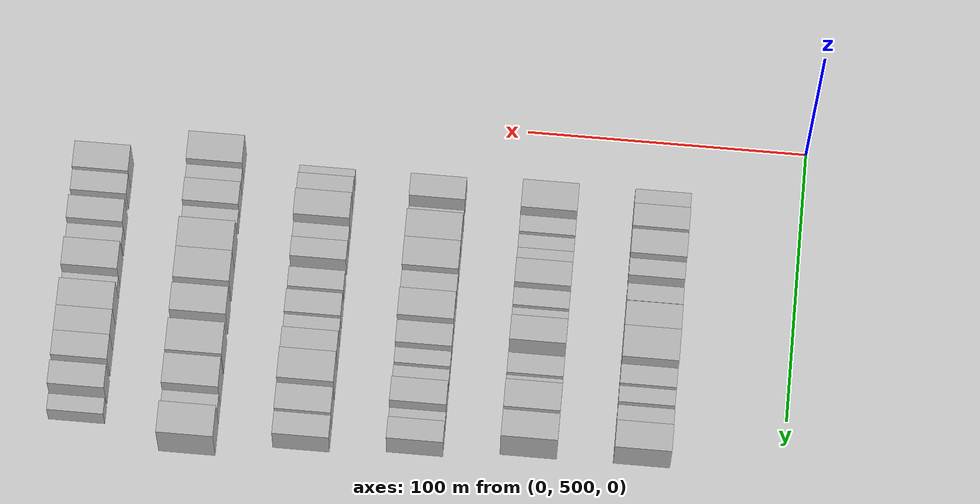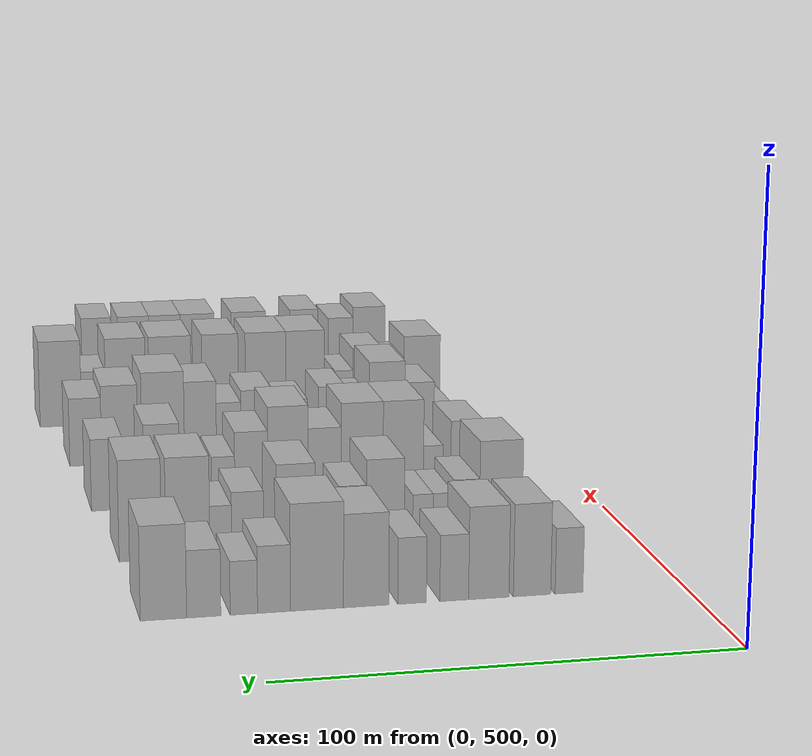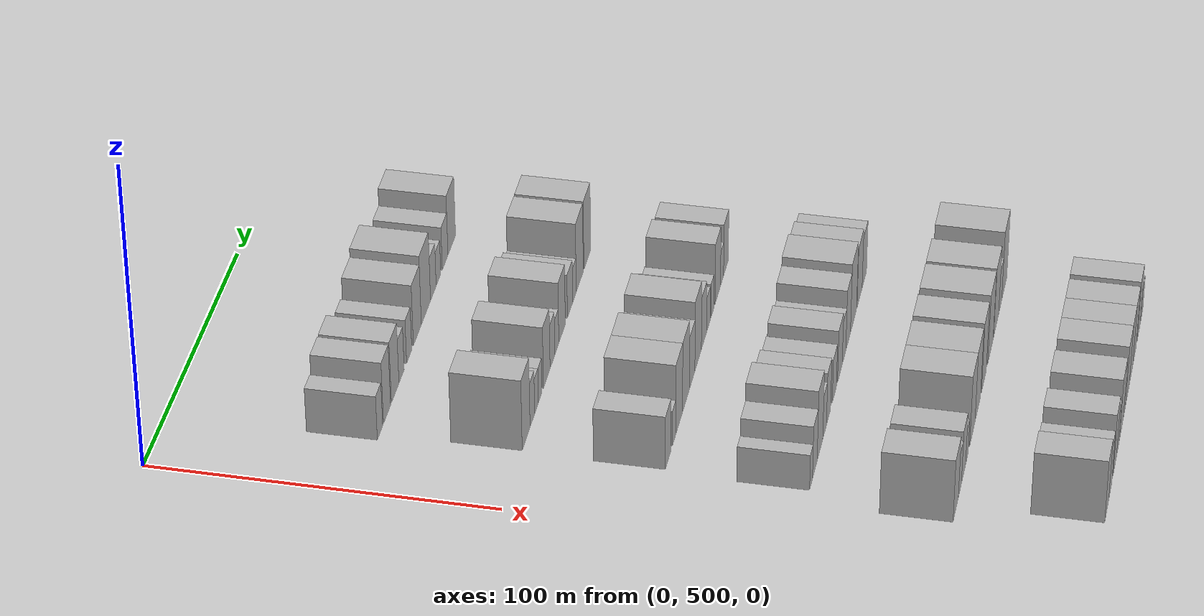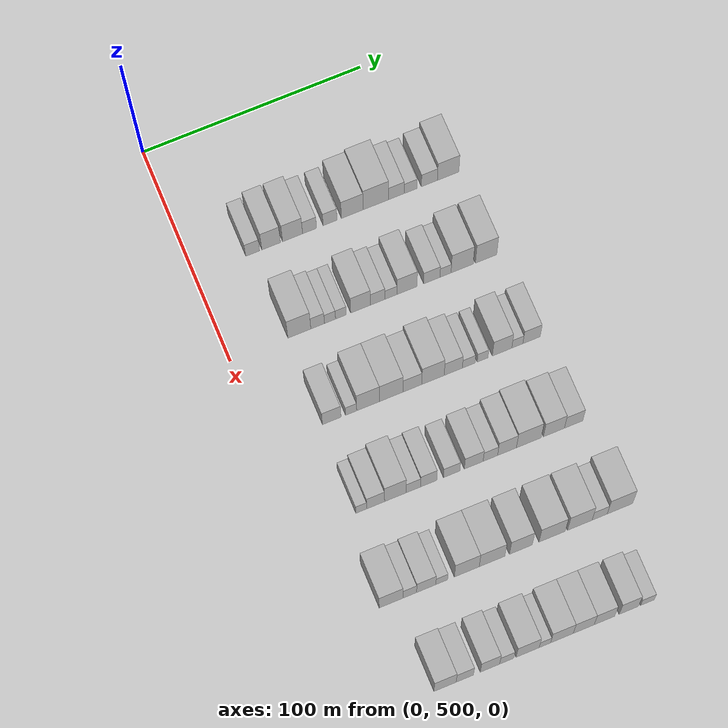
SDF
<sdf version="1.6">
 <world name="default">
  <model name="building_127">
   <static>1</static>
   <pose>50.0000 526.2221 0 0.000000 0.000000 0.000000</pose>
   <link name="link">
    <pose>0 0 7.50 0 0 0</pose>
    <collision name="collision"><geometry><box><size>20.0000 6.3201 15.0000</size></box></geometry></collision>
    <visual name="visual">
     <cast_shadows>0</cast_shadows>
     <geometry><box><size>20.0000 6.3201 15.0000</size></box></geometry>
     <material>
      <script>
       <uri>model://HANNAS_wall/materials/scripts</uri>
       <uri>model://HANNAS_wall/materials/textures</uri>
       <name>vrc/HANNAS_wall</name>
      </script>
     </material>
    </visual>
   </link>
  </model>
  <model name="building_128">
   <static>1</static>
   <pose>50.0000 534.5977 0 0.000000 0.000000 0.000000</pose>
   <link name="link">
    <pose>0 0 10.50 0 0 0</pose>
    <collision name="collision"><geometry><box><size>20.0000 8.4310 21.0000</size></box></geometry></collision>
    <visual name="visual">
     <cast_shadows>0</cast_shadows>
     <geometry><box><size>20.0000 8.4310 21.0000</size></box></geometry>
     <material>
      <script>
       <uri>model://HANNAS_wall/materials/scripts</uri>
       <uri>model://HANNAS_wall/materials/textures</uri>
       <name>vrc/HANNAS_wall</name>
      </script>
     </material>
    </visual>
   </link>
  </model>
  <model name="building_129">
   <static>1</static>
   <pose>50.0000 544.3470 0 0.000000 0.000000 0.000000</pose>
   <link name="link">
    <pose>0 0 10.50 0 0 0</pose>
    <collision name="collision"><geometry><box><size>20.0000 9.0677 21.0000</size></box></geometry></collision>
    <visual name="visual">
     <cast_shadows>0</cast_shadows>
     <geometry><box><size>20.0000 9.0677 21.0000</size></box></geometry>
     <material>
      <script>
       <uri>model://HANNAS_wall/materials/scripts</uri>
       <uri>model://HANNAS_wall/materials/textures</uri>
       <name>vrc/HANNAS_wall</name>
      </script>
     </material>
    </visual>
   </link>
  </model>
  <model name="building_130">
   <static>1</static>
   <pose>50.0000 552.0781 0 0.000000 0.000000 0.000000</pose>
   <link name="link">
    <pose>0 0 7.50 0 0 0</pose>
    <collision name="collision"><geometry><box><size>20.0000 6.3945 15.0000</size></box></geometry></collision>
    <visual name="visual">
     <cast_shadows>0</cast_shadows>
     <geometry><box><size>20.0000 6.3945 15.0000</size></box></geometry>
     <material>
      <script>
       <uri>model://HANNAS_wall/materials/scripts</uri>
       <uri>model://HANNAS_wall/materials/textures</uri>
       <name>vrc/HANNAS_wall</name>
      </script>
     </material>
    </visual>
   </link>
  </model>
  <model name="building_131">
   <static>1</static>
   <pose>50.0000 561.4440 0 0.000000 0.000000 0.000000</pose>
   <link name="link">
    <pose>0 0 7.50 0 0 0</pose>
    <collision name="collision"><geometry><box><size>20.0000 6.3374 15.0000</size></box></geometry></collision>
    <visual name="visual">
     <cast_shadows>0</cast_shadows>
     <geometry><box><size>20.0000 6.3374 15.0000</size></box></geometry>
     <material>
      <script>
       <uri>model://HANNAS_wall/materials/scripts</uri>
       <uri>model://HANNAS_wall/materials/textures</uri>
       <name>vrc/HANNAS_wall</name>
      </script>
     </material>
    </visual>
   </link>
  </model>
  <model name="building_132">
   <static>1</static>
   <pose>50.0000 571.5961 0 0.000000 0.000000 0.000000</pose>
   <link name="link">
    <pose>0 0 10.50 0 0 0</pose>
    <collision name="collision"><geometry><box><size>20.0000 9.9668 21.0000</size></box></geometry></collision>
    <visual name="visual">
     <cast_shadows>0</cast_shadows>
     <geometry><box><size>20.0000 9.9668 21.0000</size></box></geometry>
     <material>
      <script>
       <uri>model://HANNAS_wall/materials/scripts</uri>
       <uri>model://HANNAS_wall/materials/textures</uri>
       <name>vrc/HANNAS_wall</name>
      </script>
     </material>
    </visual>
   </link>
  </model>
  <model name="building_133">
   <static>1</static>
   <pose>50.0000 582.3894 0 0.000000 0.000000 0.000000</pose>
   <link name="link">
    <pose>0 0 12.00 0 0 0</pose>
    <collision name="collision"><geometry><box><size>20.0000 11.6197 24.0000</size></box></geometry></collision>
    <visual name="visual">
     <cast_shadows>0</cast_shadows>
     <geometry><box><size>20.0000 11.6197 24.0000</size></box></geometry>
     <material>
      <script>
       <uri>model://HANNAS_wall/materials/scripts</uri>
       <uri>model://HANNAS_wall/materials/textures</uri>
       <name>vrc/HANNAS_wall</name>
      </script>
     </material>
    </visual>
   </link>
  </model>
  <model name="building_134">
   <static>1</static>
   <pose>50.0000 591.7671 0 0.000000 0.000000 0.000000</pose>
   <link name="link">
    <pose>0 0 7.50 0 0 0</pose>
    <collision name="collision"><geometry><box><size>20.0000 7.1357 15.0000</size></box></geometry></collision>
    <visual name="visual">
     <cast_shadows>0</cast_shadows>
     <geometry><box><size>20.0000 7.1357 15.0000</size></box></geometry>
     <material>
      <script>
       <uri>model://HANNAS_wall/materials/scripts</uri>
       <uri>model://HANNAS_wall/materials/textures</uri>
       <name>vrc/HANNAS_wall</name>
      </script>
     </material>
    </visual>
   </link>
  </model>
  <model name="building_135">
   <static>1</static>
   <pose>50.0000 598.2877 0 0.000000 0.000000 0.000000</pose>
   <link name="link">
    <pose>0 0 6.00 0 0 0</pose>
    <collision name="collision"><geometry><box><size>20.0000 5.9053 12.0000</size></box></geometry></collision>
    <visual name="visual">
     <cast_shadows>0</cast_shadows>
     <geometry><box><size>20.0000 5.9053 12.0000</size></box></geometry>
     <material>
      <script>
       <uri>model://HANNAS_wall/materials/scripts</uri>
       <uri>model://HANNAS_wall/materials/textures</uri>
       <name>vrc/HANNAS_wall</name>
      </script>
     </material>
    </visual>
   </link>
  </model>
  <model name="building_136">
   <static>1</static>
   <pose>50.0000 606.9169 0 0.000000 0.000000 0.000000</pose>
   <link name="link">
    <pose>0 0 7.50 0 0 0</pose>
    <collision name="collision"><geometry><box><size>20.0000 7.3531 15.0000</size></box></geometry></collision>
    <visual name="visual">
     <cast_shadows>0</cast_shadows>
     <geometry><box><size>20.0000 7.3531 15.0000</size></box></geometry>
     <material>
      <script>
       <uri>model://HANNAS_wall/materials/scripts</uri>
       <uri>model://HANNAS_wall/materials/textures</uri>
       <name>vrc/HANNAS_wall</name>
      </script>
     </material>
    </visual>
   </link>
  </model>
  <model name="building_137">
   <static>1</static>
   <pose>50.0000 615.5396 0 0.000000 0.000000 0.000000</pose>
   <link name="link">
    <pose>0 0 10.50 0 0 0</pose>
    <collision name="collision"><geometry><box><size>20.0000 9.8924 21.0000</size></box></geometry></collision>
    <visual name="visual">
     <cast_shadows>0</cast_shadows>
     <geometry><box><size>20.0000 9.8924 21.0000</size></box></geometry>
     <material>
      <script>
       <uri>model://HANNAS_wall/materials/scripts</uri>
       <uri>model://HANNAS_wall/materials/textures</uri>
       <name>vrc/HANNAS_wall</name>
      </script>
     </material>
    </visual>
   </link>
  </model>
  <model name="building_258">
   <static>1</static>
   <pose>90.0000 531.1487 0 0.000000 0.000000 0.000000</pose>
   <link name="link">
    <pose>0 0 12.00 0 0 0</pose>
    <collision name="collision"><geometry><box><size>20.0000 10.3593 24.0000</size></box></geometry></collision>
    <visual name="visual">
     <cast_shadows>0</cast_shadows>
     <geometry><box><size>20.0000 10.3593 24.0000</size></box></geometry>
     <material>
      <script>
       <uri>model://HANNAS_wall/materials/scripts</uri>
       <uri>model://HANNAS_wall/materials/textures</uri>
       <name>vrc/HANNAS_wall</name>
      </script>
     </material>
    </visual>
   </link>
  </model>
  <model name="building_259">
   <static>1</static>
   <pose>90.0000 539.4129 0 0.000000 0.000000 0.000000</pose>
   <link name="link">
    <pose>0 0 7.50 0 0 0</pose>
    <collision name="collision"><geometry><box><size>20.0000 6.1691 15.0000</size></box></geometry></collision>
    <visual name="visual">
     <cast_shadows>0</cast_shadows>
     <geometry><box><size>20.0000 6.1691 15.0000</size></box></geometry>
     <material>
      <script>
       <uri>model://HANNAS_wall/materials/scripts</uri>
       <uri>model://HANNAS_wall/materials/textures</uri>
       <name>vrc/HANNAS_wall</name>
      </script>
     </material>
    </visual>
   </link>
  </model>
  <model name="building_260">
   <static>1</static>
   <pose>90.0000 544.9897 0 0.000000 0.000000 0.000000</pose>
   <link name="link">
    <pose>0 0 6.00 0 0 0</pose>
    <collision name="collision"><geometry><box><size>20.0000 4.9845 12.0000</size></box></geometry></collision>
    <visual name="visual">
     <cast_shadows>0</cast_shadows>
     <geometry><box><size>20.0000 4.9845 12.0000</size></box></geometry>
     <material>
      <script>
       <uri>model://HANNAS_wall/materials/scripts</uri>
       <uri>model://HANNAS_wall/materials/textures</uri>
       <name>vrc/HANNAS_wall</name>
      </script>
     </material>
    </visual>
   </link>
  </model>
  <model name="building_261">
   <static>1</static>
   <pose>90.0000 549.8990 0 0.000000 0.000000 0.000000</pose>
   <link name="link">
    <pose>0 0 6.00 0 0 0</pose>
    <collision name="collision"><geometry><box><size>20.0000 4.8341 12.0000</size></box></geometry></collision>
    <visual name="visual">
     <cast_shadows>0</cast_shadows>
     <geometry><box><size>20.0000 4.8341 12.0000</size></box></geometry>
     <material>
      <script>
       <uri>model://HANNAS_wall/materials/scripts</uri>
       <uri>model://HANNAS_wall/materials/textures</uri>
       <name>vrc/HANNAS_wall</name>
      </script>
     </material>
    </visual>
   </link>
  </model>
  <model name="building_262">
   <static>1</static>
   <pose>90.0000 558.8101 0 0.000000 0.000000 0.000000</pose>
   <link name="link">
    <pose>0 0 10.50 0 0 0</pose>
    <collision name="collision"><geometry><box><size>20.0000 8.9882 21.0000</size></box></geometry></collision>
    <visual name="visual">
     <cast_shadows>0</cast_shadows>
     <geometry><box><size>20.0000 8.9882 21.0000</size></box></geometry>
     <material>
      <script>
       <uri>model://HANNAS_wall/materials/scripts</uri>
       <uri>model://HANNAS_wall/materials/textures</uri>
       <name>vrc/HANNAS_wall</name>
      </script>
     </material>
    </visual>
   </link>
  </model>
  <model name="building_263">
   <static>1</static>
   <pose>90.0000 566.5755 0 0.000000 0.000000 0.000000</pose>
   <link name="link">
    <pose>0 0 7.50 0 0 0</pose>
    <collision name="collision"><geometry><box><size>20.0000 6.5426 15.0000</size></box></geometry></collision>
    <visual name="visual">
     <cast_shadows>0</cast_shadows>
     <geometry><box><size>20.0000 6.5426 15.0000</size></box></geometry>
     <material>
      <script>
       <uri>model://HANNAS_wall/materials/scripts</uri>
       <uri>model://HANNAS_wall/materials/textures</uri>
       <name>vrc/HANNAS_wall</name>
      </script>
     </material>
    </visual>
   </link>
  </model>
  <model name="building_264">
   <static>1</static>
   <pose>90.0000 572.6094 0 0.000000 0.000000 0.000000</pose>
   <link name="link">
    <pose>0 0 6.00 0 0 0</pose>
    <collision name="collision"><geometry><box><size>20.0000 5.5252 12.0000</size></box></geometry></collision>
    <visual name="visual">
     <cast_shadows>0</cast_shadows>
     <geometry><box><size>20.0000 5.5252 12.0000</size></box></geometry>
     <material>
      <script>
       <uri>model://HANNAS_wall/materials/scripts</uri>
       <uri>model://HANNAS_wall/materials/textures</uri>
       <name>vrc/HANNAS_wall</name>
      </script>
     </material>
    </visual>
   </link>
  </model>
  <model name="building_265">
   <static>1</static>
   <pose>90.0000 579.9141 0 0.000000 0.000000 0.000000</pose>
   <link name="link">
    <pose>0 0 10.50 0 0 0</pose>
    <collision name="collision"><geometry><box><size>20.0000 9.0842 21.0000</size></box></geometry></collision>
    <visual name="visual">
     <cast_shadows>0</cast_shadows>
     <geometry><box><size>20.0000 9.0842 21.0000</size></box></geometry>
     <material>
      <script>
       <uri>model://HANNAS_wall/materials/scripts</uri>
       <uri>model://HANNAS_wall/materials/textures</uri>
       <name>vrc/HANNAS_wall</name>
      </script>
     </material>
    </visual>
   </link>
  </model>
  <model name="building_266">
   <static>1</static>
   <pose>90.0000 591.1749 0 0.000000 0.000000 0.000000</pose>
   <link name="link">
    <pose>0 0 7.50 0 0 0</pose>
    <collision name="collision"><geometry><box><size>20.0000 7.4373 15.0000</size></box></geometry></collision>
    <visual name="visual">
     <cast_shadows>0</cast_shadows>
     <geometry><box><size>20.0000 7.4373 15.0000</size></box></geometry>
     <material>
      <script>
       <uri>model://HANNAS_wall/materials/scripts</uri>
       <uri>model://HANNAS_wall/materials/textures</uri>
       <name>vrc/HANNAS_wall</name>
      </script>
     </material>
    </visual>
   </link>
  </model>
  <model name="building_267">
   <static>1</static>
   <pose>90.0000 597.4122 0 0.000000 0.000000 0.000000</pose>
   <link name="link">
    <pose>0 0 6.00 0 0 0</pose>
    <collision name="collision"><geometry><box><size>20.0000 5.0372 12.0000</size></box></geometry></collision>
    <visual name="visual">
     <cast_shadows>0</cast_shadows>
     <geometry><box><size>20.0000 5.0372 12.0000</size></box></geometry>
     <material>
      <script>
       <uri>model://HANNAS_wall/materials/scripts</uri>
       <uri>model://HANNAS_wall/materials/textures</uri>
       <name>vrc/HANNAS_wall</name>
      </script>
     </material>
    </visual>
   </link>
  </model>
  <model name="building_268">
   <static>1</static>
   <pose>90.0000 604.9952 0 0.000000 0.000000 0.000000</pose>
   <link name="link">
    <pose>0 0 12.00 0 0 0</pose>
    <collision name="collision"><geometry><box><size>20.0000 10.1287 24.0000</size></box></geometry></collision>
    <visual name="visual">
     <cast_shadows>0</cast_shadows>
     <geometry><box><size>20.0000 10.1287 24.0000</size></box></geometry>
     <material>
      <script>
       <uri>model://HANNAS_wall/materials/scripts</uri>
       <uri>model://HANNAS_wall/materials/textures</uri>
       <name>vrc/HANNAS_wall</name>
      </script>
     </material>
    </visual>
   </link>
  </model>
  <model name="building_269">
   <static>1</static>
   <pose>90.0000 615.9355 0 0.000000 0.000000 0.000000</pose>
   <link name="link">
    <pose>0 0 12.00 0 0 0</pose>
    <collision name="collision"><geometry><box><size>20.0000 9.7520 24.0000</size></box></geometry></collision>
    <visual name="visual">
     <cast_shadows>0</cast_shadows>
     <geometry><box><size>20.0000 9.7520 24.0000</size></box></geometry>
     <material>
      <script>
       <uri>model://HANNAS_wall/materials/scripts</uri>
       <uri>model://HANNAS_wall/materials/textures</uri>
       <name>vrc/HANNAS_wall</name>
      </script>
     </material>
    </visual>
   </link>
  </model>
  <model name="building_402">
   <static>1</static>
   <pose>130.0000 529.3530 0 0.000000 0.000000 0.000000</pose>
   <link name="link">
    <pose>0 0 9.00 0 0 0</pose>
    <collision name="collision"><geometry><box><size>20.0000 8.3183 18.0000</size></box></geometry></collision>
    <visual name="visual">
     <cast_shadows>0</cast_shadows>
     <geometry><box><size>20.0000 8.3183 18.0000</size></box></geometry>
     <material>
      <script>
       <uri>model://HANNAS_wall/materials/scripts</uri>
       <uri>model://HANNAS_wall/materials/textures</uri>
       <name>vrc/HANNAS_wall</name>
      </script>
     </material>
    </visual>
   </link>
  </model>
  <model name="building_403">
   <static>1</static>
   <pose>130.0000 538.0249 0 0.000000 0.000000 0.000000</pose>
   <link name="link">
    <pose>0 0 6.00 0 0 0</pose>
    <collision name="collision"><geometry><box><size>20.0000 5.0255 12.0000</size></box></geometry></collision>
    <visual name="visual">
     <cast_shadows>0</cast_shadows>
     <geometry><box><size>20.0000 5.0255 12.0000</size></box></geometry>
     <material>
      <script>
       <uri>model://HANNAS_wall/materials/scripts</uri>
       <uri>model://HANNAS_wall/materials/textures</uri>
       <name>vrc/HANNAS_wall</name>
      </script>
     </material>
    </visual>
   </link>
  </model>
  <model name="building_404">
   <static>1</static>
   <pose>130.0000 545.6767 0 0.000000 0.000000 0.000000</pose>
   <link name="link">
    <pose>0 0 12.00 0 0 0</pose>
    <collision name="collision"><geometry><box><size>20.0000 10.2782 24.0000</size></box></geometry></collision>
    <visual name="visual">
     <cast_shadows>0</cast_shadows>
     <geometry><box><size>20.0000 10.2782 24.0000</size></box></geometry>
     <material>
      <script>
       <uri>model://HANNAS_wall/materials/scripts</uri>
       <uri>model://HANNAS_wall/materials/textures</uri>
       <name>vrc/HANNAS_wall</name>
      </script>
     </material>
    </visual>
   </link>
  </model>
  <model name="building_405">
   <static>1</static>
   <pose>130.0000 556.1029 0 0.000000 0.000000 0.000000</pose>
   <link name="link">
    <pose>0 0 12.00 0 0 0</pose>
    <collision name="collision"><geometry><box><size>20.0000 10.5742 24.0000</size></box></geometry></collision>
    <visual name="visual">
     <cast_shadows>0</cast_shadows>
     <geometry><box><size>20.0000 10.5742 24.0000</size></box></geometry>
     <material>
      <script>
       <uri>model://HANNAS_wall/materials/scripts</uri>
       <uri>model://HANNAS_wall/materials/textures</uri>
       <name>vrc/HANNAS_wall</name>
      </script>
     </material>
    </visual>
   </link>
  </model>
  <model name="building_406">
   <static>1</static>
   <pose>130.0000 565.5772 0 0.000000 0.000000 0.000000</pose>
   <link name="link">
    <pose>0 0 9.00 0 0 0</pose>
    <collision name="collision"><geometry><box><size>20.0000 8.3745 18.0000</size></box></geometry></collision>
    <visual name="visual">
     <cast_shadows>0</cast_shadows>
     <geometry><box><size>20.0000 8.3745 18.0000</size></box></geometry>
     <material>
      <script>
       <uri>model://HANNAS_wall/materials/scripts</uri>
       <uri>model://HANNAS_wall/materials/textures</uri>
       <name>vrc/HANNAS_wall</name>
      </script>
     </material>
    </visual>
   </link>
  </model>
  <model name="building_407">
   <static>1</static>
   <pose>130.0000 574.8259 0 0.000000 0.000000 0.000000</pose>
   <link name="link">
    <pose>0 0 12.00 0 0 0</pose>
    <collision name="collision"><geometry><box><size>20.0000 10.1228 24.0000</size></box></geometry></collision>
    <visual name="visual">
     <cast_shadows>0</cast_shadows>
     <geometry><box><size>20.0000 10.1228 24.0000</size></box></geometry>
     <material>
      <script>
       <uri>model://HANNAS_wall/materials/scripts</uri>
       <uri>model://HANNAS_wall/materials/textures</uri>
       <name>vrc/HANNAS_wall</name>
      </script>
     </material>
    </visual>
   </link>
  </model>
  <model name="building_408">
   <static>1</static>
   <pose>130.0000 583.9973 0 0.000000 0.000000 0.000000</pose>
   <link name="link">
    <pose>0 0 9.00 0 0 0</pose>
    <collision name="collision"><geometry><box><size>20.0000 8.2201 18.0000</size></box></geometry></collision>
    <visual name="visual">
     <cast_shadows>0</cast_shadows>
     <geometry><box><size>20.0000 8.2201 18.0000</size></box></geometry>
     <material>
      <script>
       <uri>model://HANNAS_wall/materials/scripts</uri>
       <uri>model://HANNAS_wall/materials/textures</uri>
       <name>vrc/HANNAS_wall</name>
      </script>
     </material>
    </visual>
   </link>
  </model>
  <model name="building_409">
   <static>1</static>
   <pose>130.0000 590.9670 0 0.000000 0.000000 0.000000</pose>
   <link name="link">
    <pose>0 0 6.00 0 0 0</pose>
    <collision name="collision"><geometry><box><size>20.0000 5.7194 12.0000</size></box></geometry></collision>
    <visual name="visual">
     <cast_shadows>0</cast_shadows>
     <geometry><box><size>20.0000 5.7194 12.0000</size></box></geometry>
     <material>
      <script>
       <uri>model://HANNAS_wall/materials/scripts</uri>
       <uri>model://HANNAS_wall/materials/textures</uri>
       <name>vrc/HANNAS_wall</name>
      </script>
     </material>
    </visual>
   </link>
  </model>
  <model name="building_410">
   <static>1</static>
   <pose>130.0000 597.2537 0 0.000000 0.000000 0.000000</pose>
   <link name="link">
    <pose>0 0 6.00 0 0 0</pose>
    <collision name="collision"><geometry><box><size>20.0000 4.8541 12.0000</size></box></geometry></collision>
    <visual name="visual">
     <cast_shadows>0</cast_shadows>
     <geometry><box><size>20.0000 4.8541 12.0000</size></box></geometry>
     <material>
      <script>
       <uri>model://HANNAS_wall/materials/scripts</uri>
       <uri>model://HANNAS_wall/materials/textures</uri>
       <name>vrc/HANNAS_wall</name>
      </script>
     </material>
    </visual>
   </link>
  </model>
  <model name="building_411">
   <static>1</static>
   <pose>130.0000 606.0888 0 0.000000 0.000000 0.000000</pose>
   <link name="link">
    <pose>0 0 10.50 0 0 0</pose>
    <collision name="collision"><geometry><box><size>20.0000 8.8160 21.0000</size></box></geometry></collision>
    <visual name="visual">
     <cast_shadows>0</cast_shadows>
     <geometry><box><size>20.0000 8.8160 21.0000</size></box></geometry>
     <material>
      <script>
       <uri>model://HANNAS_wall/materials/scripts</uri>
       <uri>model://HANNAS_wall/materials/textures</uri>
       <name>vrc/HANNAS_wall</name>
      </script>
     </material>
    </visual>
   </link>
  </model>
  <model name="building_412">
   <static>1</static>
   <pose>130.0000 613.0206 0 0.000000 0.000000 0.000000</pose>
   <link name="link">
    <pose>0 0 6.00 0 0 0</pose>
    <collision name="collision"><geometry><box><size>20.0000 5.0476 12.0000</size></box></geometry></collision>
    <visual name="visual">
     <cast_shadows>0</cast_shadows>
     <geometry><box><size>20.0000 5.0476 12.0000</size></box></geometry>
     <material>
      <script>
       <uri>model://HANNAS_wall/materials/scripts</uri>
       <uri>model://HANNAS_wall/materials/textures</uri>
       <name>vrc/HANNAS_wall</name>
      </script>
     </material>
    </visual>
   </link>
  </model>
  <model name="building_413">
   <static>1</static>
   <pose>130.0000 619.4748 0 0.000000 0.000000 0.000000</pose>
   <link name="link">
    <pose>0 0 9.00 0 0 0</pose>
    <collision name="collision"><geometry><box><size>20.0000 7.8607 18.0000</size></box></geometry></collision>
    <visual name="visual">
     <cast_shadows>0</cast_shadows>
     <geometry><box><size>20.0000 7.8607 18.0000</size></box></geometry>
     <material>
      <script>
       <uri>model://HANNAS_wall/materials/scripts</uri>
       <uri>model://HANNAS_wall/materials/textures</uri>
       <name>vrc/HANNAS_wall</name>
      </script>
     </material>
    </visual>
   </link>
  </model>
  <model name="building_531">
   <static>1</static>
   <pose>170.0000 526.0265 0 0.000000 0.000000 0.000000</pose>
   <link name="link">
    <pose>0 0 6.00 0 0 0</pose>
    <collision name="collision"><geometry><box><size>20.0000 4.8281 12.0000</size></box></geometry></collision>
    <visual name="visual">
     <cast_shadows>0</cast_shadows>
     <geometry><box><size>20.0000 4.8281 12.0000</size></box></geometry>
     <material>
      <script>
       <uri>model://HANNAS_wall/materials/scripts</uri>
       <uri>model://HANNAS_wall/materials/textures</uri>
       <name>vrc/HANNAS_wall</name>
      </script>
     </material>
    </visual>
   </link>
  </model>
  <model name="building_532">
   <static>1</static>
   <pose>170.0000 532.4180 0 0.000000 0.000000 0.000000</pose>
   <link name="link">
    <pose>0 0 9.00 0 0 0</pose>
    <collision name="collision"><geometry><box><size>20.0000 7.9548 18.0000</size></box></geometry></collision>
    <visual name="visual">
     <cast_shadows>0</cast_shadows>
     <geometry><box><size>20.0000 7.9548 18.0000</size></box></geometry>
     <material>
      <script>
       <uri>model://HANNAS_wall/materials/scripts</uri>
       <uri>model://HANNAS_wall/materials/textures</uri>
       <name>vrc/HANNAS_wall</name>
      </script>
     </material>
    </visual>
   </link>
  </model>
  <model name="building_533">
   <static>1</static>
   <pose>170.0000 541.2017 0 0.000000 0.000000 0.000000</pose>
   <link name="link">
    <pose>0 0 12.00 0 0 0</pose>
    <collision name="collision"><geometry><box><size>20.0000 9.6127 24.0000</size></box></geometry></collision>
    <visual name="visual">
     <cast_shadows>0</cast_shadows>
     <geometry><box><size>20.0000 9.6127 24.0000</size></box></geometry>
     <material>
      <script>
       <uri>model://HANNAS_wall/materials/scripts</uri>
       <uri>model://HANNAS_wall/materials/textures</uri>
       <name>vrc/HANNAS_wall</name>
      </script>
     </material>
    </visual>
   </link>
  </model>
  <model name="building_534">
   <static>1</static>
   <pose>170.0000 549.2223 0 0.000000 0.000000 0.000000</pose>
   <link name="link">
    <pose>0 0 7.50 0 0 0</pose>
    <collision name="collision"><geometry><box><size>20.0000 6.4285 15.0000</size></box></geometry></collision>
    <visual name="visual">
     <cast_shadows>0</cast_shadows>
     <geometry><box><size>20.0000 6.4285 15.0000</size></box></geometry>
     <material>
      <script>
       <uri>model://HANNAS_wall/materials/scripts</uri>
       <uri>model://HANNAS_wall/materials/textures</uri>
       <name>vrc/HANNAS_wall</name>
      </script>
     </material>
    </visual>
   </link>
  </model>
  <model name="building_535">
   <static>1</static>
   <pose>170.0000 556.0421 0 0.000000 0.000000 0.000000</pose>
   <link name="link">
    <pose>0 0 9.00 0 0 0</pose>
    <collision name="collision"><geometry><box><size>20.0000 7.2109 18.0000</size></box></geometry></collision>
    <visual name="visual">
     <cast_shadows>0</cast_shadows>
     <geometry><box><size>20.0000 7.2109 18.0000</size></box></geometry>
     <material>
      <script>
       <uri>model://HANNAS_wall/materials/scripts</uri>
       <uri>model://HANNAS_wall/materials/textures</uri>
       <name>vrc/HANNAS_wall</name>
      </script>
     </material>
    </visual>
   </link>
  </model>
  <model name="building_536">
   <static>1</static>
   <pose>170.0000 566.3061 0 0.000000 0.000000 0.000000</pose>
   <link name="link">
    <pose>0 0 7.50 0 0 0</pose>
    <collision name="collision"><geometry><box><size>20.0000 7.3171 15.0000</size></box></geometry></collision>
    <visual name="visual">
     <cast_shadows>0</cast_shadows>
     <geometry><box><size>20.0000 7.3171 15.0000</size></box></geometry>
     <material>
      <script>
       <uri>model://HANNAS_wall/materials/scripts</uri>
       <uri>model://HANNAS_wall/materials/textures</uri>
       <name>vrc/HANNAS_wall</name>
      </script>
     </material>
    </visual>
   </link>
  </model>
  <model name="building_537">
   <static>1</static>
   <pose>170.0000 576.1767 0 0.000000 0.000000 0.000000</pose>
   <link name="link">
    <pose>0 0 9.00 0 0 0</pose>
    <collision name="collision"><geometry><box><size>20.0000 8.4241 18.0000</size></box></geometry></collision>
    <visual name="visual">
     <cast_shadows>0</cast_shadows>
     <geometry><box><size>20.0000 8.4241 18.0000</size></box></geometry>
     <material>
      <script>
       <uri>model://HANNAS_wall/materials/scripts</uri>
       <uri>model://HANNAS_wall/materials/textures</uri>
       <name>vrc/HANNAS_wall</name>
      </script>
     </material>
    </visual>
   </link>
  </model>
  <model name="building_538">
   <static>1</static>
   <pose>170.0000 583.6514 0 0.000000 0.000000 0.000000</pose>
   <link name="link">
    <pose>0 0 7.50 0 0 0</pose>
    <collision name="collision"><geometry><box><size>20.0000 6.5252 15.0000</size></box></geometry></collision>
    <visual name="visual">
     <cast_shadows>0</cast_shadows>
     <geometry><box><size>20.0000 6.5252 15.0000</size></box></geometry>
     <material>
      <script>
       <uri>model://HANNAS_wall/materials/scripts</uri>
       <uri>model://HANNAS_wall/materials/textures</uri>
       <name>vrc/HANNAS_wall</name>
      </script>
     </material>
    </visual>
   </link>
  </model>
  <model name="building_539">
   <static>1</static>
   <pose>170.0000 591.1329 0 0.000000 0.000000 0.000000</pose>
   <link name="link">
    <pose>0 0 10.50 0 0 0</pose>
    <collision name="collision"><geometry><box><size>20.0000 8.4378 21.0000</size></box></geometry></collision>
    <visual name="visual">
     <cast_shadows>0</cast_shadows>
     <geometry><box><size>20.0000 8.4378 21.0000</size></box></geometry>
     <material>
      <script>
       <uri>model://HANNAS_wall/materials/scripts</uri>
       <uri>model://HANNAS_wall/materials/textures</uri>
       <name>vrc/HANNAS_wall</name>
      </script>
     </material>
    </visual>
   </link>
  </model>
  <model name="building_540">
   <static>1</static>
   <pose>170.0000 600.9327 0 0.000000 0.000000 0.000000</pose>
   <link name="link">
    <pose>0 0 12.00 0 0 0</pose>
    <collision name="collision"><geometry><box><size>20.0000 11.1619 24.0000</size></box></geometry></collision>
    <visual name="visual">
     <cast_shadows>0</cast_shadows>
     <geometry><box><size>20.0000 11.1619 24.0000</size></box></geometry>
     <material>
      <script>
       <uri>model://HANNAS_wall/materials/scripts</uri>
       <uri>model://HANNAS_wall/materials/textures</uri>
       <name>vrc/HANNAS_wall</name>
      </script>
     </material>
    </visual>
   </link>
  </model>
  <model name="building_541">
   <static>1</static>
   <pose>170.0000 612.2653 0 0.000000 0.000000 0.000000</pose>
   <link name="link">
    <pose>0 0 10.50 0 0 0</pose>
    <collision name="collision"><geometry><box><size>20.0000 9.5032 21.0000</size></box></geometry></collision>
    <visual name="visual">
     <cast_shadows>0</cast_shadows>
     <geometry><box><size>20.0000 9.5032 21.0000</size></box></geometry>
     <material>
      <script>
       <uri>model://HANNAS_wall/materials/scripts</uri>
       <uri>model://HANNAS_wall/materials/textures</uri>
       <name>vrc/HANNAS_wall</name>
      </script>
     </material>
    </visual>
   </link>
  </model>
  <model name="building_542">
   <static>1</static>
   <pose>170.0000 621.1564 0 0.000000 0.000000 0.000000</pose>
   <link name="link">
    <pose>0 0 9.00 0 0 0</pose>
    <collision name="collision"><geometry><box><size>20.0000 8.2790 18.0000</size></box></geometry></collision>
    <visual name="visual">
     <cast_shadows>0</cast_shadows>
     <geometry><box><size>20.0000 8.2790 18.0000</size></box></geometry>
     <material>
      <script>
       <uri>model://HANNAS_wall/materials/scripts</uri>
       <uri>model://HANNAS_wall/materials/textures</uri>
       <name>vrc/HANNAS_wall</name>
      </script>
     </material>
    </visual>
   </link>
  </model>
  <model name="building_678">
   <static>1</static>
   <pose>210.0000 522.5874 0 0.000000 0.000000 0.000000</pose>
   <link name="link">
    <pose>0 0 10.50 0 0 0</pose>
    <collision name="collision"><geometry><box><size>20.0000 10.4488 21.0000</size></box></geometry></collision>
    <visual name="visual">
     <cast_shadows>0</cast_shadows>
     <geometry><box><size>20.0000 10.4488 21.0000</size></box></geometry>
     <material>
      <script>
       <uri>model://HANNAS_wall/materials/scripts</uri>
       <uri>model://HANNAS_wall/materials/textures</uri>
       <name>vrc/HANNAS_wall</name>
      </script>
     </material>
    </visual>
   </link>
  </model>
  <model name="building_679">
   <static>1</static>
   <pose>210.0000 530.8293 0 0.000000 0.000000 0.000000</pose>
   <link name="link">
    <pose>0 0 7.50 0 0 0</pose>
    <collision name="collision"><geometry><box><size>20.0000 6.0348 15.0000</size></box></geometry></collision>
    <visual name="visual">
     <cast_shadows>0</cast_shadows>
     <geometry><box><size>20.0000 6.0348 15.0000</size></box></geometry>
     <material>
      <script>
       <uri>model://HANNAS_wall/materials/scripts</uri>
       <uri>model://HANNAS_wall/materials/textures</uri>
       <name>vrc/HANNAS_wall</name>
      </script>
     </material>
    </visual>
   </link>
  </model>
  <model name="building_680">
   <static>1</static>
   <pose>210.0000 538.0910 0 0.000000 0.000000 0.000000</pose>
   <link name="link">
    <pose>0 0 9.00 0 0 0</pose>
    <collision name="collision"><geometry><box><size>20.0000 8.4887 18.0000</size></box></geometry></collision>
    <visual name="visual">
     <cast_shadows>0</cast_shadows>
     <geometry><box><size>20.0000 8.4887 18.0000</size></box></geometry>
     <material>
      <script>
       <uri>model://HANNAS_wall/materials/scripts</uri>
       <uri>model://HANNAS_wall/materials/textures</uri>
       <name>vrc/HANNAS_wall</name>
      </script>
     </material>
    </visual>
   </link>
  </model>
  <model name="building_681">
   <static>1</static>
   <pose>210.0000 544.9508 0 0.000000 0.000000 0.000000</pose>
   <link name="link">
    <pose>0 0 6.00 0 0 0</pose>
    <collision name="collision"><geometry><box><size>20.0000 5.2309 12.0000</size></box></geometry></collision>
    <visual name="visual">
     <cast_shadows>0</cast_shadows>
     <geometry><box><size>20.0000 5.2309 12.0000</size></box></geometry>
     <material>
      <script>
       <uri>model://HANNAS_wall/materials/scripts</uri>
       <uri>model://HANNAS_wall/materials/textures</uri>
       <name>vrc/HANNAS_wall</name>
      </script>
     </material>
    </visual>
   </link>
  </model>
  <model name="building_682">
   <static>1</static>
   <pose>210.0000 556.0649 0 0.000000 0.000000 0.000000</pose>
   <link name="link">
    <pose>0 0 12.00 0 0 0</pose>
    <collision name="collision"><geometry><box><size>20.0000 10.9973 24.0000</size></box></geometry></collision>
    <visual name="visual">
     <cast_shadows>0</cast_shadows>
     <geometry><box><size>20.0000 10.9973 24.0000</size></box></geometry>
     <material>
      <script>
       <uri>model://HANNAS_wall/materials/scripts</uri>
       <uri>model://HANNAS_wall/materials/textures</uri>
       <name>vrc/HANNAS_wall</name>
      </script>
     </material>
    </visual>
   </link>
  </model>
  <model name="building_683">
   <static>1</static>
   <pose>210.0000 567.2726 0 0.000000 0.000000 0.000000</pose>
   <link name="link">
    <pose>0 0 12.00 0 0 0</pose>
    <collision name="collision"><geometry><box><size>20.0000 11.4182 24.0000</size></box></geometry></collision>
    <visual name="visual">
     <cast_shadows>0</cast_shadows>
     <geometry><box><size>20.0000 11.4182 24.0000</size></box></geometry>
     <material>
      <script>
       <uri>model://HANNAS_wall/materials/scripts</uri>
       <uri>model://HANNAS_wall/materials/textures</uri>
       <name>vrc/HANNAS_wall</name>
      </script>
     </material>
    </visual>
   </link>
  </model>
  <model name="building_684">
   <static>1</static>
   <pose>210.0000 580.0680 0 0.000000 0.000000 0.000000</pose>
   <link name="link">
    <pose>0 0 12.00 0 0 0</pose>
    <collision name="collision"><geometry><box><size>20.0000 10.1725 24.0000</size></box></geometry></collision>
    <visual name="visual">
     <cast_shadows>0</cast_shadows>
     <geometry><box><size>20.0000 10.1725 24.0000</size></box></geometry>
     <material>
      <script>
       <uri>model://HANNAS_wall/materials/scripts</uri>
       <uri>model://HANNAS_wall/materials/textures</uri>
       <name>vrc/HANNAS_wall</name>
      </script>
     </material>
    </visual>
   </link>
  </model>
  <model name="building_685">
   <static>1</static>
   <pose>210.0000 594.0289 0 0.000000 0.000000 0.000000</pose>
   <link name="link">
    <pose>0 0 12.00 0 0 0</pose>
    <collision name="collision"><geometry><box><size>20.0000 11.7493 24.0000</size></box></geometry></collision>
    <visual name="visual">
     <cast_shadows>0</cast_shadows>
     <geometry><box><size>20.0000 11.7493 24.0000</size></box></geometry>
     <material>
      <script>
       <uri>model://HANNAS_wall/materials/scripts</uri>
       <uri>model://HANNAS_wall/materials/textures</uri>
       <name>vrc/HANNAS_wall</name>
      </script>
     </material>
    </visual>
   </link>
  </model>
  <model name="building_686">
   <static>1</static>
   <pose>210.0000 606.4274 0 0.000000 0.000000 0.000000</pose>
   <link name="link">
    <pose>0 0 12.00 0 0 0</pose>
    <collision name="collision"><geometry><box><size>20.0000 11.0477 24.0000</size></box></geometry></collision>
    <visual name="visual">
     <cast_shadows>0</cast_shadows>
     <geometry><box><size>20.0000 11.0477 24.0000</size></box></geometry>
     <material>
      <script>
       <uri>model://HANNAS_wall/materials/scripts</uri>
       <uri>model://HANNAS_wall/materials/textures</uri>
       <name>vrc/HANNAS_wall</name>
      </script>
     </material>
    </visual>
   </link>
  </model>
  <model name="building_687">
   <static>1</static>
   <pose>210.0000 615.3182 0 0.000000 0.000000 0.000000</pose>
   <link name="link">
    <pose>0 0 7.50 0 0 0</pose>
    <collision name="collision"><geometry><box><size>20.0000 6.7340 15.0000</size></box></geometry></collision>
    <visual name="visual">
     <cast_shadows>0</cast_shadows>
     <geometry><box><size>20.0000 6.7340 15.0000</size></box></geometry>
     <material>
      <script>
       <uri>model://HANNAS_wall/materials/scripts</uri>
       <uri>model://HANNAS_wall/materials/textures</uri>
       <name>vrc/HANNAS_wall</name>
      </script>
     </material>
    </visual>
   </link>
  </model>
  <model name="building_688">
   <static>1</static>
   <pose>210.0000 624.3858 0 0.000000 0.000000 0.000000</pose>
   <link name="link">
    <pose>0 0 12.00 0 0 0</pose>
    <collision name="collision"><geometry><box><size>20.0000 11.4012 24.0000</size></box></geometry></collision>
    <visual name="visual">
     <cast_shadows>0</cast_shadows>
     <geometry><box><size>20.0000 11.4012 24.0000</size></box></geometry>
     <material>
      <script>
       <uri>model://HANNAS_wall/materials/scripts</uri>
       <uri>model://HANNAS_wall/materials/textures</uri>
       <name>vrc/HANNAS_wall</name>
      </script>
     </material>
    </visual>
   </link>
  </model>
  <model name="building_812">
   <static>1</static>
   <pose>250.0000 529.5152 0 0.000000 0.000000 0.000000</pose>
   <link name="link">
    <pose>0 0 10.50 0 0 0</pose>
    <collision name="collision"><geometry><box><size>20.0000 9.7013 21.0000</size></box></geometry></collision>
    <visual name="visual">
     <cast_shadows>0</cast_shadows>
     <geometry><box><size>20.0000 9.7013 21.0000</size></box></geometry>
     <material>
      <script>
       <uri>model://HANNAS_wall/materials/scripts</uri>
       <uri>model://HANNAS_wall/materials/textures</uri>
       <name>vrc/HANNAS_wall</name>
      </script>
     </material>
    </visual>
   </link>
  </model>
  <model name="building_813">
   <static>1</static>
   <pose>250.0000 538.1669 0 0.000000 0.000000 0.000000</pose>
   <link name="link">
    <pose>0 0 9.00 0 0 0</pose>
    <collision name="collision"><geometry><box><size>20.0000 7.6021 18.0000</size></box></geometry></collision>
    <visual name="visual">
     <cast_shadows>0</cast_shadows>
     <geometry><box><size>20.0000 7.6021 18.0000</size></box></geometry>
     <material>
      <script>
       <uri>model://HANNAS_wall/materials/scripts</uri>
       <uri>model://HANNAS_wall/materials/textures</uri>
       <name>vrc/HANNAS_wall</name>
      </script>
     </material>
    </visual>
   </link>
  </model>
  <model name="building_814">
   <static>1</static>
   <pose>250.0000 549.2166 0 0.000000 0.000000 0.000000</pose>
   <link name="link">
    <pose>0 0 10.50 0 0 0</pose>
    <collision name="collision"><geometry><box><size>20.0000 8.4973 21.0000</size></box></geometry></collision>
    <visual name="visual">
     <cast_shadows>0</cast_shadows>
     <geometry><box><size>20.0000 8.4973 21.0000</size></box></geometry>
     <material>
      <script>
       <uri>model://HANNAS_wall/materials/scripts</uri>
       <uri>model://HANNAS_wall/materials/textures</uri>
       <name>vrc/HANNAS_wall</name>
      </script>
     </material>
    </visual>
   </link>
  </model>
  <model name="building_815">
   <static>1</static>
   <pose>250.0000 556.5935 0 0.000000 0.000000 0.000000</pose>
   <link name="link">
    <pose>0 0 7.50 0 0 0</pose>
    <collision name="collision"><geometry><box><size>20.0000 6.2565 15.0000</size></box></geometry></collision>
    <visual name="visual">
     <cast_shadows>0</cast_shadows>
     <geometry><box><size>20.0000 6.2565 15.0000</size></box></geometry>
     <material>
      <script>
       <uri>model://HANNAS_wall/materials/scripts</uri>
       <uri>model://HANNAS_wall/materials/textures</uri>
       <name>vrc/HANNAS_wall</name>
      </script>
     </material>
    </visual>
   </link>
  </model>
  <model name="building_816">
   <static>1</static>
   <pose>250.0000 565.8118 0 0.000000 0.000000 0.000000</pose>
   <link name="link">
    <pose>0 0 10.50 0 0 0</pose>
    <collision name="collision"><geometry><box><size>20.0000 10.1801 21.0000</size></box></geometry></collision>
    <visual name="visual">
     <cast_shadows>0</cast_shadows>
     <geometry><box><size>20.0000 10.1801 21.0000</size></box></geometry>
     <material>
      <script>
       <uri>model://HANNAS_wall/materials/scripts</uri>
       <uri>model://HANNAS_wall/materials/textures</uri>
       <name>vrc/HANNAS_wall</name>
      </script>
     </material>
    </visual>
   </link>
  </model>
  <model name="building_817">
   <static>1</static>
   <pose>250.0000 573.4022 0 0.000000 0.000000 0.000000</pose>
   <link name="link">
    <pose>0 0 6.00 0 0 0</pose>
    <collision name="collision"><geometry><box><size>20.0000 5.0008 12.0000</size></box></geometry></collision>
    <visual name="visual">
     <cast_shadows>0</cast_shadows>
     <geometry><box><size>20.0000 5.0008 12.0000</size></box></geometry>
     <material>
      <script>
       <uri>model://HANNAS_wall/materials/scripts</uri>
       <uri>model://HANNAS_wall/materials/textures</uri>
       <name>vrc/HANNAS_wall</name>
      </script>
     </material>
    </visual>
   </link>
  </model>
  <model name="building_818">
   <static>1</static>
   <pose>250.0000 580.9350 0 0.000000 0.000000 0.000000</pose>
   <link name="link">
    <pose>0 0 10.50 0 0 0</pose>
    <collision name="collision"><geometry><box><size>20.0000 10.0646 21.0000</size></box></geometry></collision>
    <visual name="visual">
     <cast_shadows>0</cast_shadows>
     <geometry><box><size>20.0000 10.0646 21.0000</size></box></geometry>
     <material>
      <script>
       <uri>model://HANNAS_wall/materials/scripts</uri>
       <uri>model://HANNAS_wall/materials/textures</uri>
       <name>vrc/HANNAS_wall</name>
      </script>
     </material>
    </visual>
   </link>
  </model>
  <model name="building_819">
   <static>1</static>
   <pose>250.0000 590.5982 0 0.000000 0.000000 0.000000</pose>
   <link name="link">
    <pose>0 0 10.50 0 0 0</pose>
    <collision name="collision"><geometry><box><size>20.0000 9.2618 21.0000</size></box></geometry></collision>
    <visual name="visual">
     <cast_shadows>0</cast_shadows>
     <geometry><box><size>20.0000 9.2618 21.0000</size></box></geometry>
     <material>
      <script>
       <uri>model://HANNAS_wall/materials/scripts</uri>
       <uri>model://HANNAS_wall/materials/textures</uri>
       <name>vrc/HANNAS_wall</name>
      </script>
     </material>
    </visual>
   </link>
  </model>
  <model name="building_820">
   <static>1</static>
   <pose>250.0000 599.7767 0 0.000000 0.000000 0.000000</pose>
   <link name="link">
    <pose>0 0 10.50 0 0 0</pose>
    <collision name="collision"><geometry><box><size>20.0000 9.0952 21.0000</size></box></geometry></collision>
    <visual name="visual">
     <cast_shadows>0</cast_shadows>
     <geometry><box><size>20.0000 9.0952 21.0000</size></box></geometry>
     <material>
      <script>
       <uri>model://HANNAS_wall/materials/scripts</uri>
       <uri>model://HANNAS_wall/materials/textures</uri>
       <name>vrc/HANNAS_wall</name>
      </script>
     </material>
    </visual>
   </link>
  </model>
  <model name="building_821">
   <static>1</static>
   <pose>250.0000 610.6185 0 0.000000 0.000000 0.000000</pose>
   <link name="link">
    <pose>0 0 10.50 0 0 0</pose>
    <collision name="collision"><geometry><box><size>20.0000 8.5884 21.0000</size></box></geometry></collision>
    <visual name="visual">
     <cast_shadows>0</cast_shadows>
     <geometry><box><size>20.0000 8.5884 21.0000</size></box></geometry>
     <material>
      <script>
       <uri>model://HANNAS_wall/materials/scripts</uri>
       <uri>model://HANNAS_wall/materials/textures</uri>
       <name>vrc/HANNAS_wall</name>
      </script>
     </material>
    </visual>
   </link>
  </model>
  <model name="building_822">
   <static>1</static>
   <pose>250.0000 618.8943 0 0.000000 0.000000 0.000000</pose>
   <link name="link">
    <pose>0 0 6.00 0 0 0</pose>
    <collision name="collision"><geometry><box><size>20.0000 5.9632 12.0000</size></box></geometry></collision>
    <visual name="visual">
     <cast_shadows>0</cast_shadows>
     <geometry><box><size>20.0000 5.9632 12.0000</size></box></geometry>
     <material>
      <script>
       <uri>model://HANNAS_wall/materials/scripts</uri>
       <uri>model://HANNAS_wall/materials/textures</uri>
       <name>vrc/HANNAS_wall</name>
      </script>
     </material>
    </visual>
   </link>
  </model>
 </world>
</sdf>
